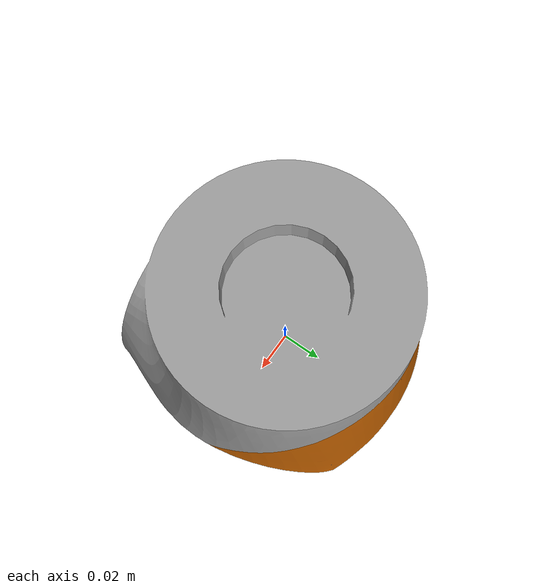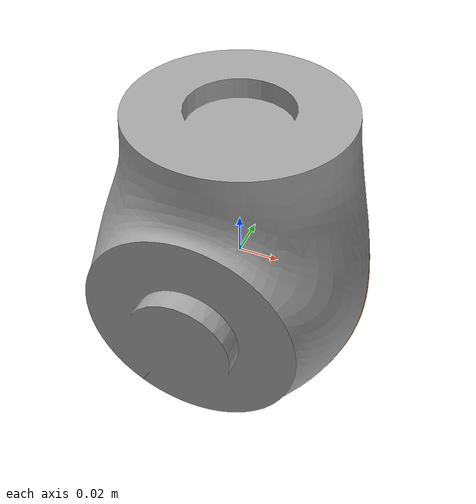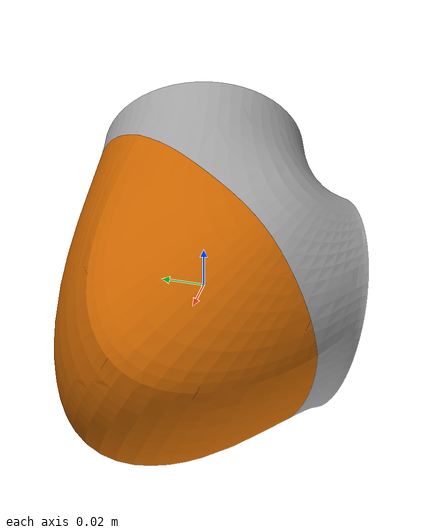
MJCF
<mujoco model="link_6">
  <default>
    <default class="visual">
      <geom group="2" type="mesh" contype="0" conaffinity="0"/>
    </default>
    <default class="collision">
      <geom group="3" type="mesh"/>
    </default>
  </default>
  <asset>
    <material name="gray.002" specular="0.5" shininess="0.25" rgba="0.640000 0.640000 0.640000 1.000000"/>
    <material name="orange.002" specular="0.5" shininess="0.25" rgba="0.800000 0.398431 0.000000 1.000000"/>
    <mesh file="link_6_0.obj"/>
    <mesh file="link_6_1.obj"/>
  </asset>
  <worldbody>
    <body name="link_6">
      <geom mesh="link_6_0" material="orange.002" class="visual"/>
      <geom mesh="link_6_1" material="gray.002" class="visual"/>
      <geom mesh="link_6_0" class="collision"/>
      <geom mesh="link_6_1" class="collision"/>
    </body>
  </worldbody>
</mujoco>
